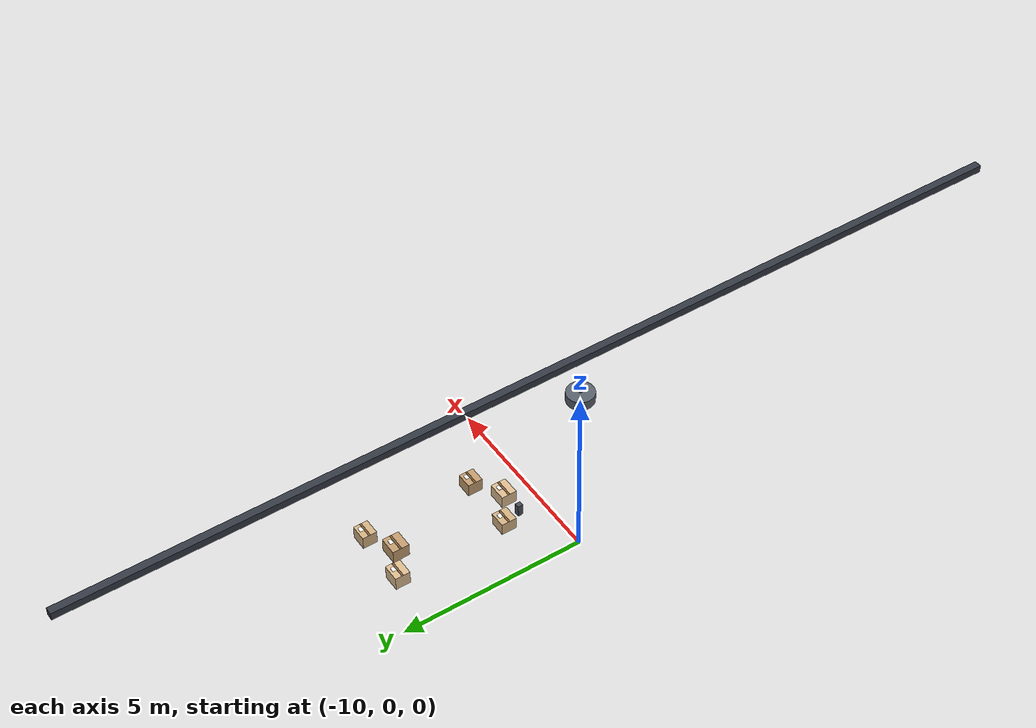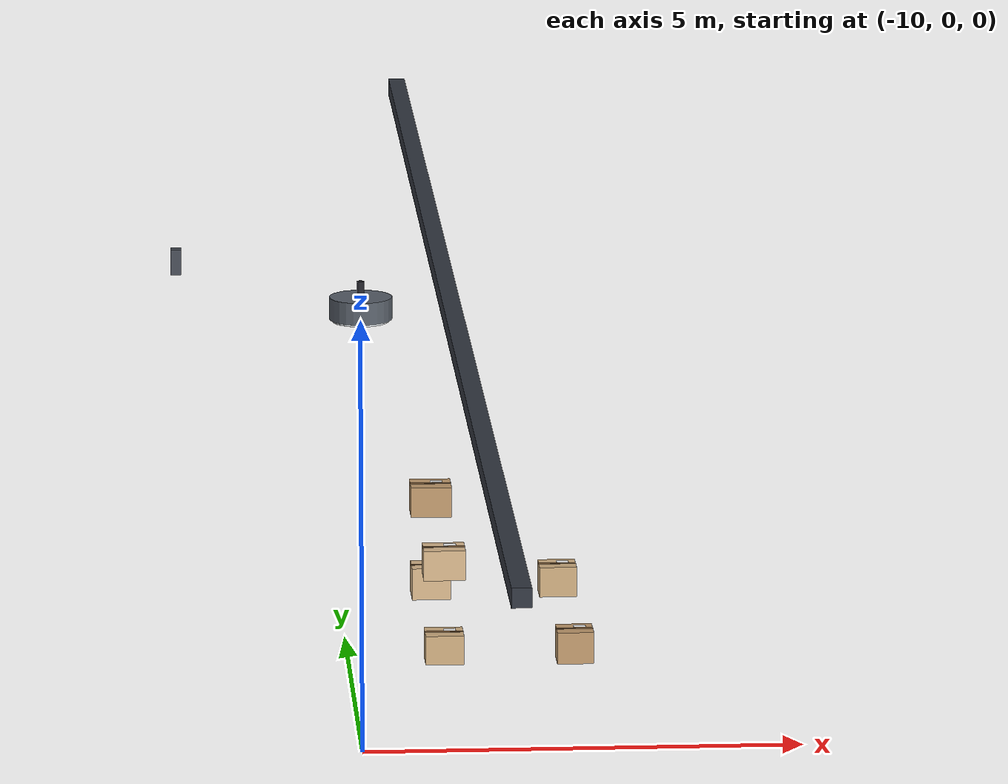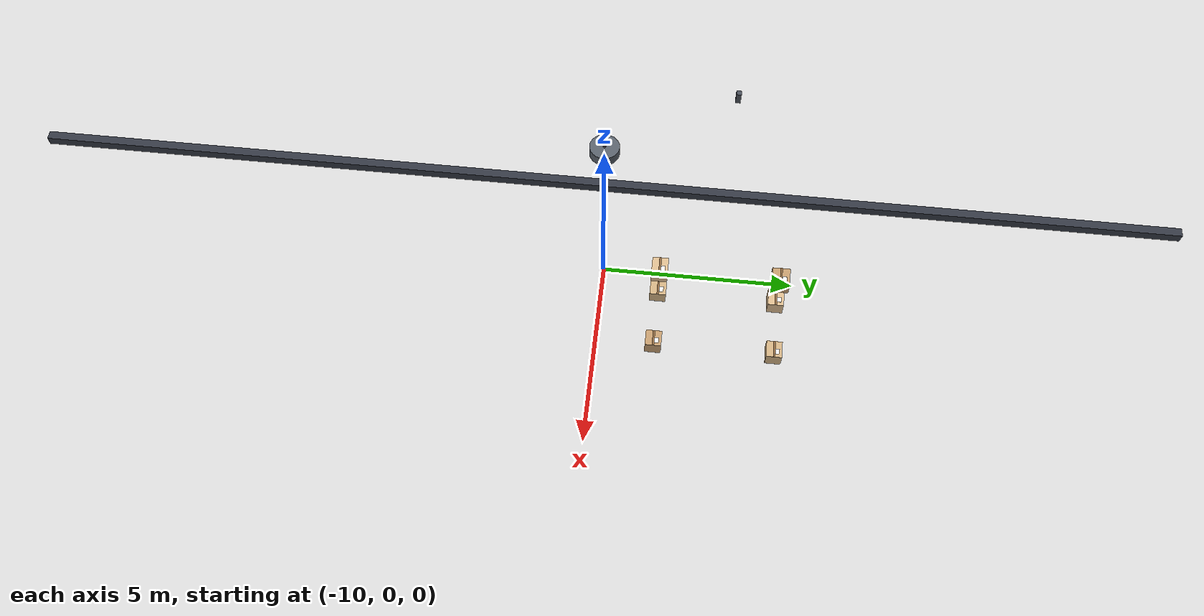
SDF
<sdf version="1.8">
 <world name="warehouse_3d">
  <model name="warehouse_architecture">
   <static>true</static>
   <link name="truss_web_2_0">
    <pose>-12.0000 3.0000 5.0500 0.0000 0.0000 0.0000</pose>
    <visual name="truss_web_2_0_vis">
     <geometry><box><size>0.1200 0.1200 0.3000</size></box></geometry>
     <material>
      <ambient>0.182 0.195 0.221 1.00</ambient>
      <diffuse>0.280 0.300 0.340 1.00</diffuse>
      <specular>0.15 0.15 0.15 1.0</specular>
     </material>
    </visual>
   </link>
   <link name="girder_0">
    <pose>-9.0000 0.0000 5.1500 0.0000 0.0000 0.0000</pose>
    <visual name="girder_0_vis">
     <geometry><box><size>0.2000 25.6000 0.2000</size></box></geometry>
     <material>
      <ambient>0.130 0.143 0.169 1.00</ambient>
      <diffuse>0.200 0.220 0.260 1.00</diffuse>
      <specular>0.15 0.15 0.15 1.0</specular>
     </material>
    </visual>
   </link>
   <link name="fixture_bell_1">
    <pose>-10.0000 0.0000 5.1500 0.0000 0.0000 0.0000</pose>
    <visual name="fixture_bell_1_vis">
     <geometry><cylinder><radius>0.3500</radius><length>0.2500</length></cylinder></geometry>
     <material>
      <ambient>0.227 0.247 0.273 1.00</ambient>
      <diffuse>0.350 0.380 0.420 1.00</diffuse>
      <specular>0.2 0.2 0.2 1.0</specular>
     </material>
    </visual>
   </link>
   <link name="fixture_stem_1">
    <pose>-10.0000 0.0000 5.3500 0.0000 0.0000 0.0000</pose>
    <visual name="fixture_stem_1_vis">
     <geometry><cylinder><radius>0.0400</radius><length>0.2000</length></cylinder></geometry>
     <material>
      <ambient>0.098 0.098 0.117 1.00</ambient>
      <diffuse>0.150 0.150 0.180 1.00</diffuse>
      <specular>0.2 0.2 0.2 1.0</specular>
     </material>
    </visual>
   </link>
   <link name="fixture_lens_1">
    <pose>-10.0000 0.0000 5.0200 0.0000 0.0000 0.0000</pose>
    <visual name="fixture_lens_1_vis">
     <geometry><cylinder><radius>0.3200</radius><length>0.0400</length></cylinder></geometry>
     <material>
      <ambient>0.617 0.637 0.650 1.00</ambient>
      <diffuse>0.950 0.980 1.000 1.00</diffuse>
      <specular>0.2 0.2 0.2 1.0</specular>
      <emissive>0.850 0.880 0.950 1.0</emissive>
     </material>
    </visual>
   </link>
  </model>
  <model name="package_P025">
   <static>true</static>
   <pose>-9.00 1.50 0.82 0 0 0</pose>
   <link name="box_link">
    <collision name="box_col"><geometry><box><size>0.44 0.41 0.34</size></box></geometry></collision>
    <visual name="box_vis">
     <geometry><box><size>0.44 0.41 0.34</size></box></geometry>
     <material>
      <ambient>0.57 0.48 0.36 1.0</ambient>
      <diffuse>0.82 0.69 0.51 1.0</diffuse>
      <specular>0.08 0.08 0.08 1.0</specular>
     </material>
    </visual>
    <visual name="top_tape">
     <pose>0 0 0.1710 0 0 0</pose>
     <geometry><box><size>0.442 0.05 0.002</size></box></geometry>
     <material><ambient>0.48 0.35 0.20 1.0</ambient><diffuse>0.55 0.40 0.24 1.0</diffuse></material>
    </visual>
    <visual name="shipping_label">
     <pose>0.066 0.082 0.1720 0 0 0</pose>
     <geometry><box><size>0.14 0.10 0.002</size></box></geometry>
     <material><ambient>0.92 0.92 0.92 1.0</ambient><diffuse>0.98 0.98 0.98 1.0</diffuse></material>
    </visual>
   </link>
  </model>
  <model name="package_P026">
   <static>true</static>
   <pose>-7.50 1.50 0.82 0 0 0</pose>
   <link name="box_link">
    <collision name="box_col"><geometry><box><size>0.42 0.40 0.37</size></box></geometry></collision>
    <visual name="box_vis">
     <geometry><box><size>0.42 0.40 0.37</size></box></geometry>
     <material>
      <ambient>0.53 0.43 0.30 1.0</ambient>
      <diffuse>0.76 0.61 0.43 1.0</diffuse>
      <specular>0.08 0.08 0.08 1.0</specular>
     </material>
    </visual>
    <visual name="top_tape">
     <pose>0 0 0.1860 0 0 0</pose>
     <geometry><box><size>0.422 0.05 0.002</size></box></geometry>
     <material><ambient>0.48 0.35 0.20 1.0</ambient><diffuse>0.55 0.40 0.24 1.0</diffuse></material>
    </visual>
    <visual name="shipping_label">
     <pose>0.063 0.080 0.1870 0 0 0</pose>
     <geometry><box><size>0.14 0.10 0.002</size></box></geometry>
     <material><ambient>0.92 0.92 0.92 1.0</ambient><diffuse>0.98 0.98 0.98 1.0</diffuse></material>
    </visual>
   </link>
  </model>
  <model name="package_P030">
   <static>true</static>
   <pose>-9.00 1.50 1.82 0 0 0</pose>
   <link name="box_link">
    <collision name="box_col"><geometry><box><size>0.48 0.40 0.35</size></box></geometry></collision>
    <visual name="box_vis">
     <geometry><box><size>0.48 0.40 0.35</size></box></geometry>
     <material>
      <ambient>0.60 0.51 0.39 1.0</ambient>
      <diffuse>0.86 0.73 0.56 1.0</diffuse>
      <specular>0.08 0.08 0.08 1.0</specular>
     </material>
    </visual>
    <visual name="top_tape">
     <pose>0 0 0.1760 0 0 0</pose>
     <geometry><box><size>0.482 0.05 0.002</size></box></geometry>
     <material><ambient>0.48 0.35 0.20 1.0</ambient><diffuse>0.55 0.40 0.24 1.0</diffuse></material>
    </visual>
    <visual name="shipping_label">
     <pose>0.072 0.080 0.1770 0 0 0</pose>
     <geometry><box><size>0.14 0.10 0.002</size></box></geometry>
     <material><ambient>0.92 0.92 0.92 1.0</ambient><diffuse>0.98 0.98 0.98 1.0</diffuse></material>
    </visual>
   </link>
  </model>
  <model name="package_P033">
   <static>true</static>
   <pose>-9.00 4.50 0.82 0 0 0</pose>
   <link name="box_link">
    <collision name="box_col"><geometry><box><size>0.46 0.40 0.38</size></box></geometry></collision>
    <visual name="box_vis">
     <geometry><box><size>0.46 0.40 0.38</size></box></geometry>
     <material>
      <ambient>0.60 0.51 0.39 1.0</ambient>
      <diffuse>0.86 0.73 0.56 1.0</diffuse>
      <specular>0.08 0.08 0.08 1.0</specular>
     </material>
    </visual>
    <visual name="top_tape">
     <pose>0 0 0.1910 0 0 0</pose>
     <geometry><box><size>0.462 0.05 0.002</size></box></geometry>
     <material><ambient>0.48 0.35 0.20 1.0</ambient><diffuse>0.55 0.40 0.24 1.0</diffuse></material>
    </visual>
    <visual name="shipping_label">
     <pose>0.069 0.080 0.1920 0 0 0</pose>
     <geometry><box><size>0.14 0.10 0.002</size></box></geometry>
     <material><ambient>0.92 0.92 0.92 1.0</ambient><diffuse>0.98 0.98 0.98 1.0</diffuse></material>
    </visual>
   </link>
  </model>
  <model name="package_P034">
   <static>true</static>
   <pose>-7.50 4.50 0.82 0 0 0</pose>
   <link name="box_link">
    <collision name="box_col"><geometry><box><size>0.44 0.39 0.36</size></box></geometry></collision>
    <visual name="box_vis">
     <geometry><box><size>0.44 0.39 0.36</size></box></geometry>
     <material>
      <ambient>0.57 0.48 0.36 1.0</ambient>
      <diffuse>0.82 0.69 0.51 1.0</diffuse>
      <specular>0.08 0.08 0.08 1.0</specular>
     </material>
    </visual>
    <visual name="top_tape">
     <pose>0 0 0.1810 0 0 0</pose>
     <geometry><box><size>0.442 0.05 0.002</size></box></geometry>
     <material><ambient>0.48 0.35 0.20 1.0</ambient><diffuse>0.55 0.40 0.24 1.0</diffuse></material>
    </visual>
    <visual name="shipping_label">
     <pose>0.066 0.078 0.1820 0 0 0</pose>
     <geometry><box><size>0.14 0.10 0.002</size></box></geometry>
     <material><ambient>0.92 0.92 0.92 1.0</ambient><diffuse>0.98 0.98 0.98 1.0</diffuse></material>
    </visual>
   </link>
  </model>
  <model name="package_P038">
   <static>true</static>
   <pose>-9.00 4.50 1.82 0 0 0</pose>
   <link name="box_link">
    <collision name="box_col"><geometry><box><size>0.48 0.44 0.36</size></box></geometry></collision>
    <visual name="box_vis">
     <geometry><box><size>0.48 0.44 0.36</size></box></geometry>
     <material>
      <ambient>0.53 0.43 0.30 1.0</ambient>
      <diffuse>0.76 0.61 0.43 1.0</diffuse>
      <specular>0.08 0.08 0.08 1.0</specular>
     </material>
    </visual>
    <visual name="top_tape">
     <pose>0 0 0.1810 0 0 0</pose>
     <geometry><box><size>0.482 0.05 0.002</size></box></geometry>
     <material><ambient>0.48 0.35 0.20 1.0</ambient><diffuse>0.55 0.40 0.24 1.0</diffuse></material>
    </visual>
    <visual name="shipping_label">
     <pose>0.072 0.088 0.1820 0 0 0</pose>
     <geometry><box><size>0.14 0.10 0.002</size></box></geometry>
     <material><ambient>0.92 0.92 0.92 1.0</ambient><diffuse>0.98 0.98 0.98 1.0</diffuse></material>
    </visual>
   </link>
  </model>
 </world>
</sdf>
